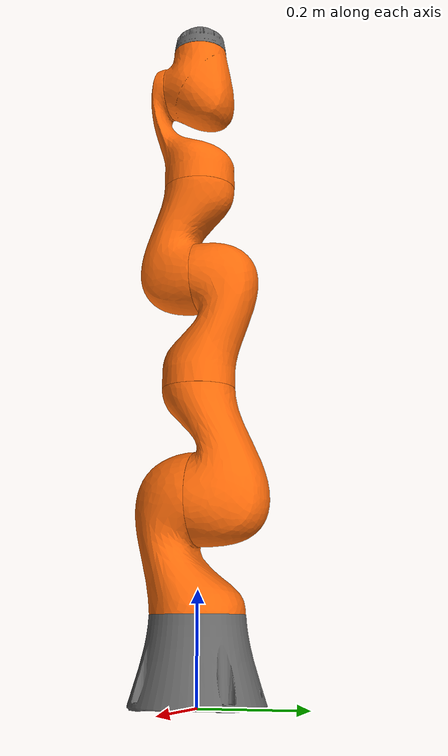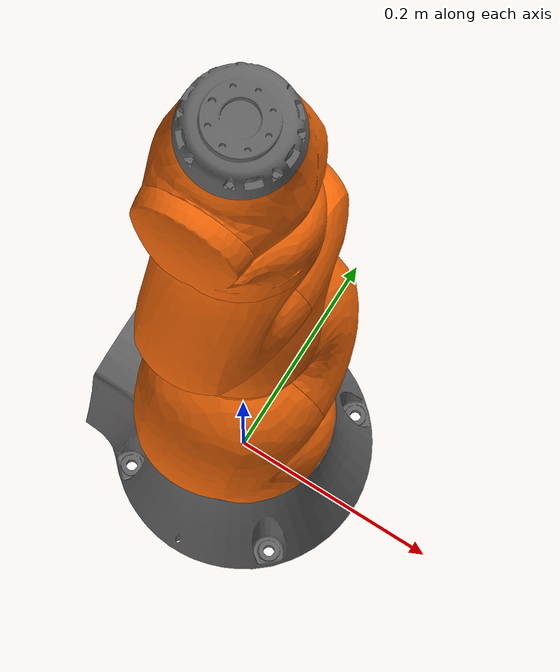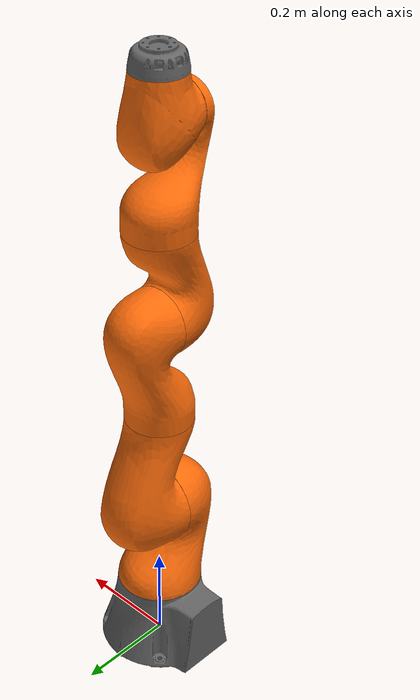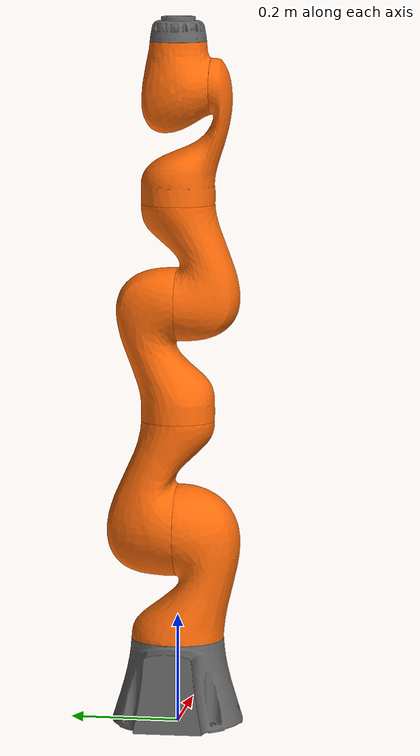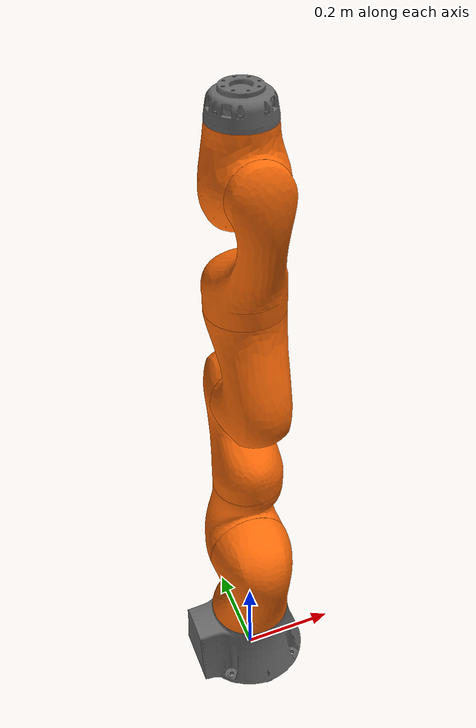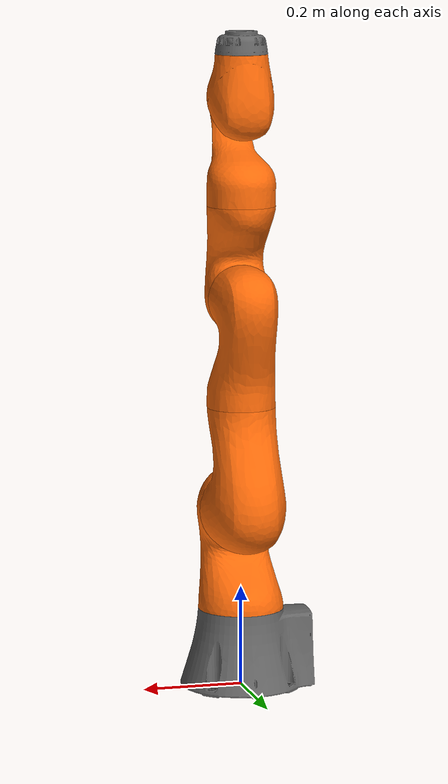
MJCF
<mujoco model="iiwa14">
    <compiler angle="radian" meshdir="visual" />

    <option integrator="implicitfast"  gravity="0 0 0" />
    <size njmax="500" nconmax="100" />
    <asset>
        <mesh name="link_0" file="link_0.stl" />
        <mesh name="link_1" file="link_1.stl" />
        <mesh name="link_2" file="link_2.stl" />
        <mesh name="link_3" file="link_3.stl" />
        <mesh name="link_4" file="link_4.stl" />
        <mesh name="link_5" file="link_5.stl" />
        <mesh name="link_6" file="link_6.stl" />
        <mesh name="link_7" file="link_7.stl" />
    </asset>
    <default>
        <geom contype="0" conaffinity="0" condim="1" />
        <joint armature="0" damping="0" limited="false" />
    </default>
    <worldbody>
        <geom type="mesh" rgba="0.4 0.4 0.4 1" mesh="link_0" />
        <body name="iiwa_link_1" pos="0 0 0.1575" >
            <inertial pos="0 -0.03 0.12" mass="4" diaginertia="0.1 0.09 0.02" />
            <joint name="iiwa_joint_1" pos="0 0 0" axis="0 0 1" />
            <geom type="mesh" rgba="1 0.423529 0.0392157 1" mesh="link_1" />
            <body name="iiwa_link_2" pos="0 0 0.2025" quat="0 0 0.707107 0.707107">
                <inertial pos="0.0003 0.059 0.042" quat="0.707107 0.707107 0 0" mass="4" diaginertia="0.05 0.044 0.018" />
                <joint name="iiwa_joint_2" pos="0 0 0" axis="0 0 1" />
                <geom type="mesh" rgba="1 0.423529 0.0392157 1" mesh="link_2" />
                <body name="iiwa_link_3" pos="0 0.2045 0" quat="0 0 0.707107 0.707107">
                    <inertial pos="0 0.03 0.13" mass="3" diaginertia="0.025 0.0238 0.0076" />
                    <joint name="iiwa_joint_3" pos="0 0 0" axis="0 0 1" />
                    <geom type="mesh" rgba="1 0.423529 0.0392157 1" mesh="link_3" />
                    <body name="iiwa_link_4" pos="0 0 0.2155" quat="0.707107 0.707107 0 0">
                        <inertial pos="0 0.067 0.034" quat="0.707107 0.707107 0 0" mass="2.7" diaginertia="0.03 0.029 0.01" />
                        <joint name="iiwa_joint_4" pos="0 0 0" axis="0 0 1" />
                        <geom type="mesh" rgba="1 0.423529 0.0392157 1" mesh="link_4" />
                        <body name="iiwa_link_5" pos="0 0.1845 0" quat="0 0 0.707107 0.707107">
                            <inertial pos="0.0001 0.021 0.076" mass="1.7" diaginertia="0.02 0.018 0.005" />
                            <joint name="iiwa_joint_5" pos="0 0 0" axis="0 0 1"  />
                            <geom type="mesh" rgba="1 0.423529 0.0392157 1" mesh="link_5" />
                            <body name="iiwa_link_6" pos="0 0 0.2155" quat="0.707107 0.707107 0 0">
                                <inertial pos="0 0.0006 0.0004" quat="0.707107 0.707107 0 0" mass="1.8" diaginertia="0.005 0.0047 0.0036" />
                                <joint name="iiwa_joint_6" pos="0 0 0" axis="0 0 1"  />
                                <geom type="mesh" rgba="1 0.423529 0.0392157 1" mesh="link_6" />
                                <body name="iiwa_link_7" pos="0 0.081 0" quat="0 0 0.707107 0.707107">
                                    <inertial pos="0 0 0.02" mass="0.3" diaginertia="0.001 0.001 0.001" />
                                    <joint name="iiwa_joint_7" pos="0 0 0" axis="0 0 1" />
                                    <geom type="mesh" rgba="0.4 0.4 0.4 1" mesh="link_7" />
                                </body>
                            </body>
                        </body>
                    </body>
                </body>
            </body>
        </body>
    </worldbody>
  <actuator>
    <general name="actuator1" joint="iiwa_joint_1" />
    <general name="actuator2" joint="iiwa_joint_2" />
    <general name="actuator3" joint="iiwa_joint_3" />
    <general name="actuator4" joint="iiwa_joint_4" />
    <general name="actuator5" joint="iiwa_joint_5" />
    <general name="actuator6" joint="iiwa_joint_6" />
    <general name="actuator7" joint="iiwa_joint_7" />
  </actuator>
</mujoco>
